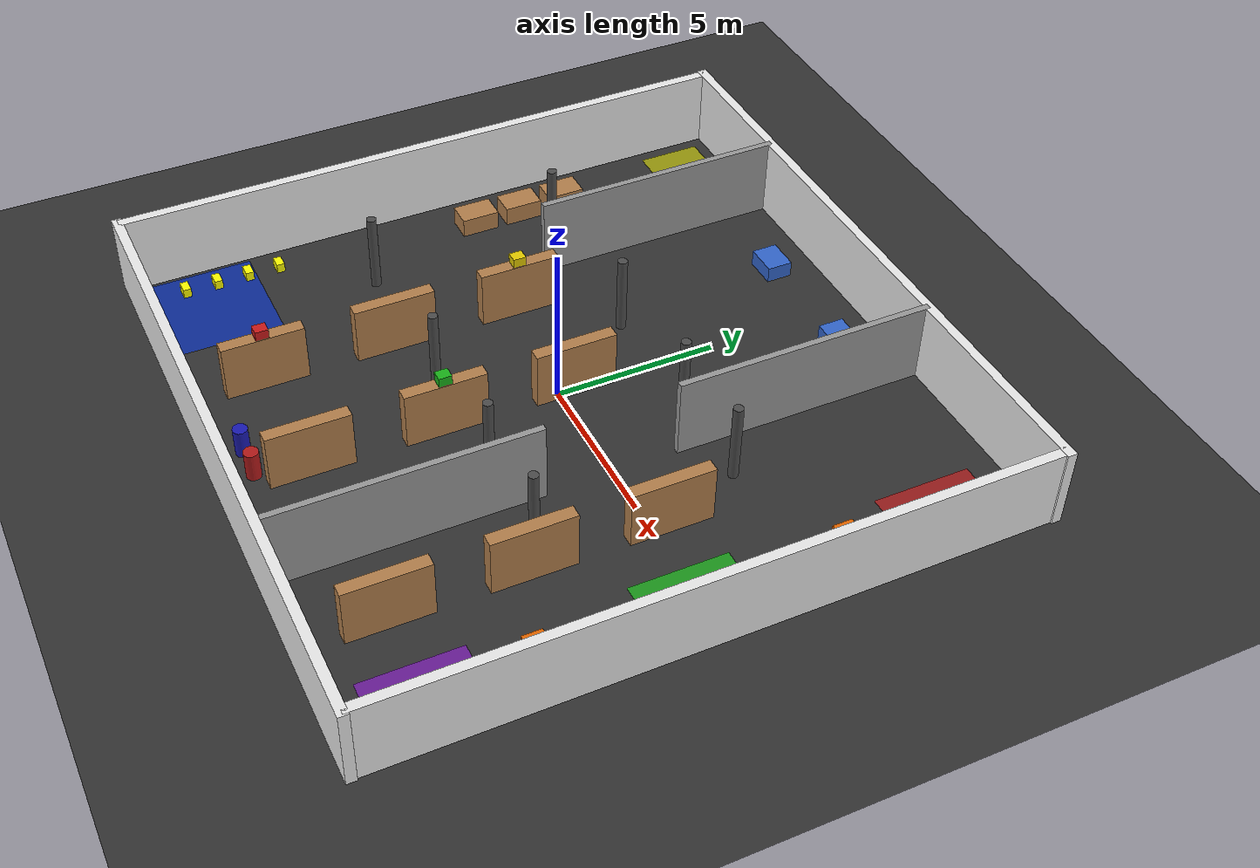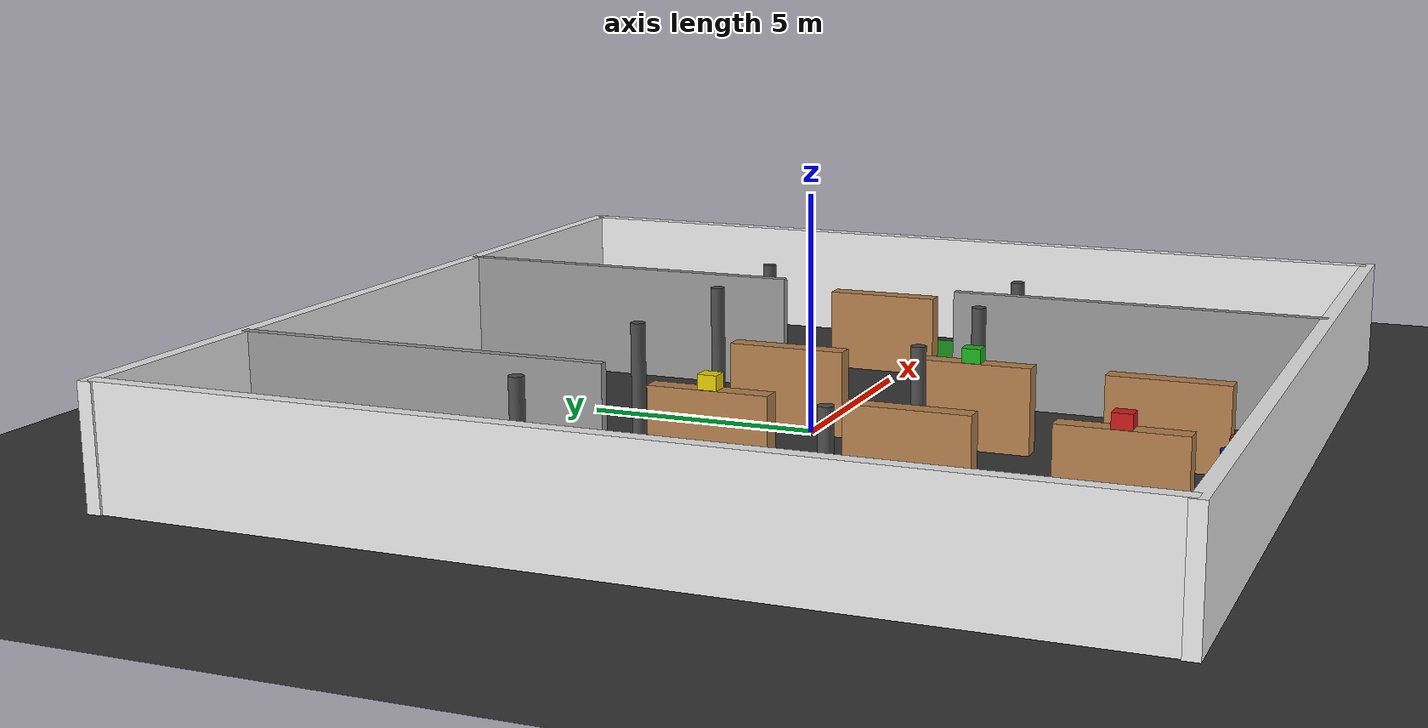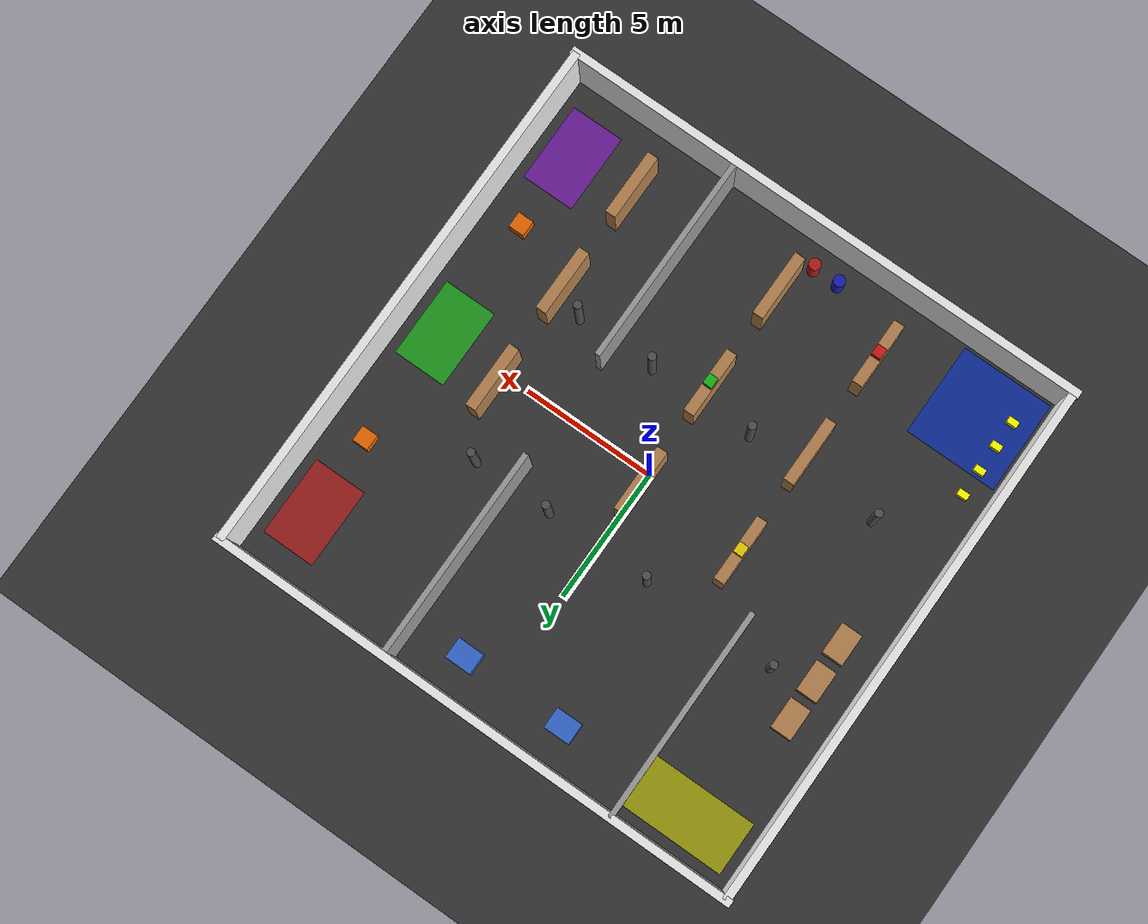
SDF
<?xml version="1.0" ?>
<sdf version="1.6">
  <world name="turtle_warehouse_world">

    <!-- 물리 엔진 설정 -->
    <physics type="ode">
      <real_time_update_rate>1000.0</real_time_update_rate>
      <max_step_size>0.001</max_step_size>
      <real_time_factor>1</real_time_factor>
    </physics>

    <!-- 조명 -->
    <light name="sun" type="directional">
      <cast_shadows>true</cast_shadows>
      <pose>0 0 10 0 0 0</pose>
      <diffuse>0.85 0.85 0.85 1</diffuse>
      <specular>0.2 0.2 0.2 1</specular>
      <attenuation>
        <range>1000</range>
        <constant>0.9</constant>
        <linear>0.01</linear>
        <quadratic>0.001</quadratic>
      </attenuation>
      <direction>-0.5 0.1 -0.9</direction>
    </light>

    <!-- 실내 형광등 효과 -->
    <light name="light_center" type="point">
      <pose>0 0 4 0 0 0</pose>
      <diffuse>0.7 0.7 0.7 1</diffuse>
      <attenuation>
        <range>20</range>
        <constant>0.5</constant>
        <linear>0.1</linear>
      </attenuation>
    </light>
    <light name="light_nw" type="point">
      <pose>-6 6 4 0 0 0</pose>
      <diffuse>0.6 0.6 0.6 1</diffuse>
      <attenuation>
        <range>15</range>
        <constant>0.5</constant>
        <linear>0.1</linear>
      </attenuation>
    </light>
    <light name="light_ne" type="point">
      <pose>6 6 4 0 0 0</pose>
      <diffuse>0.6 0.6 0.6 1</diffuse>
      <attenuation>
        <range>15</range>
        <constant>0.5</constant>
        <linear>0.1</linear>
      </attenuation>
    </light>
    <light name="light_se" type="point">
      <pose>6 -6 4 0 0 0</pose>
      <diffuse>0.6 0.6 0.6 1</diffuse>
      <attenuation>
        <range>15</range>
        <constant>0.5</constant>
        <linear>0.1</linear>
      </attenuation>
    </light>

    <!-- 바닥 -->
    <model name="ground_plane">
      <static>true</static>
      <link name="link">
        <collision name="collision">
          <geometry>
            <plane>
              <normal>0 0 1</normal>
              <size>40 40</size>
            </plane>
          </geometry>
        </collision>
        <visual name="visual">
          <geometry>
            <plane>
              <normal>0 0 1</normal>
              <size>40 40</size>
            </plane>
          </geometry>
          <material>
            <ambient>0.2 0.2 0.2 1</ambient>
            <diffuse>0.2 0.2 0.2 1</diffuse>
            <specular>0.1 0.1 0.1 1</specular>
          </material>
        </visual>
      </link>
    </model>

    <!-- 외벽 (Outer Walls)  20m x 20m 창고                           -->

    <model name="wall_north">
      <static>true</static>
      <pose>0 10 1.25 0 0 0</pose>
      <link name="link">
        <collision name="c">
          <geometry>
            <box>
              <size>20.4 0.3 2.5</size>
            </box>
          </geometry>
        </collision>
        <visual name="v">
          <geometry>
            <box>
              <size>20.4 0.3 2.5</size>
            </box>
          </geometry>
          <material>
            <script>
              <uri>file://media/materials/scripts/gazebo.material</uri>
              <name>Gazebo/White</name>
            </script>
          </material>
        </visual>
      </link>
    </model>

    <model name="wall_south">
      <static>true</static>
      <pose>0 -10 1.25 0 0 0</pose>
      <link name="link">
        <collision name="c">
          <geometry>
            <box>
              <size>20.4 0.3 2.5</size>
            </box>
          </geometry>
        </collision>
        <visual name="v">
          <geometry>
            <box>
              <size>20.4 0.3 2.5</size>
            </box>
          </geometry>
          <material>
            <script>
              <uri>file://media/materials/scripts/gazebo.material</uri>
              <name>Gazebo/White</name>
            </script>
          </material>
        </visual>
      </link>
    </model>

    <model name="wall_east">
      <static>true</static>
      <pose>10 0 1.25 0 0 0</pose>
      <link name="link">
        <collision name="c">
          <geometry>
            <box>
              <size>0.3 20 2.5</size>
            </box>
          </geometry>
        </collision>
        <visual name="v">
          <geometry>
            <box>
              <size>0.3 20 2.5</size>
            </box>
          </geometry>
          <material>
            <script>
              <uri>file://media/materials/scripts/gazebo.material</uri>
              <name>Gazebo/White</name>
            </script>
          </material>
        </visual>
      </link>
    </model>

    <model name="wall_west">
      <static>true</static>
      <pose>-10 0 1.25 0 0 0</pose>
      <link name="link">
        <collision name="c">
          <geometry>
            <box>
              <size>0.3 20 2.5</size>
            </box>
          </geometry>
        </collision>
        <visual name="v">
          <geometry>
            <box>
              <size>0.3 20 2.5</size>
            </box>
          </geometry>
          <material>
            <script>
              <uri>file://media/materials/scripts/gazebo.material</uri>
              <name>Gazebo/White</name>
            </script>
          </material>
        </visual>
      </link>
    </model>

    <!-- 내부 구획 (적재 구역 분리벽 + 병목 구간 벽)                     -->

    <!-- 적재 구역 분리벽: 서쪽에서 -5.5 x축으로 북쪽 구역 분리 -->
    <model name="inner_wall_loading_sep">
      <static>true</static>
      <pose>-5.5 6 1.25 0 0 0</pose>
      <link name="link">
        <collision name="c">
          <geometry>
            <box>
              <size>0.2 8 2.5</size>
            </box>
          </geometry>
        </collision>
        <visual name="v">
          <geometry>
            <box>
              <size>0.2 8 2.5</size>
            </box>
          </geometry>
          <material>
            <script>
              <uri>file://media/materials/scripts/gazebo.material</uri>
              <name>Gazebo/Grey</name>
            </script>
          </material>
        </visual>
      </link>
    </model>

    <!-- 병목 구간 북쪽 벽: 교차로 양보 테스트용 좁은 통로 형성 -->
    <!-- y=2~9 사이를 막아, y=-2~2 사이 약 1.5m 통로만 남김 -->
    <model name="bottleneck_wall_north">
      <static>true</static>
      <pose>3.5 6 1.25 0 0 0</pose>
      <link name="link">
        <collision name="c">
          <geometry>
            <box>
              <size>0.2 8 2.5</size>
            </box>
          </geometry>
        </collision>
        <visual name="v">
          <geometry>
            <box>
              <size>0.2 8 2.5</size>
            </box>
          </geometry>
          <material>
            <script>
              <uri>file://media/materials/scripts/gazebo.material</uri>
              <name>Gazebo/Grey</name>
            </script>
          </material>
        </visual>
      </link>
    </model>

    <!-- 병목 구간 남쪽 벽 -->
    <model name="bottleneck_wall_south">
      <static>true</static>
      <pose>3.5 -6 1.25 0 0 0</pose>
      <link name="link">
        <collision name="c">
          <geometry>
            <box>
              <size>0.2 8 2.5</size>
            </box>
          </geometry>
        </collision>
        <visual name="v">
          <geometry>
            <box>
              <size>0.2 8 2.5</size>
            </box>
          </geometry>
          <material>
            <script>
              <uri>file://media/materials/scripts/gazebo.material</uri>
              <name>Gazebo/Grey</name>
            </script>
          </material>
        </visual>
      </link>
    </model>

    <!-- 선반 Row A (x = -4)   선반 높이 1.8m, 폭 0.4m                -->

    <model name="shelf_A1">
      <static>true</static>
      <pose>-4 -7.5 0.9 0 0 0</pose>
      <link name="link">
        <collision name="c">
          <geometry>
            <box>
              <size>0.4 2.5 1.8</size>
            </box>
          </geometry>
        </collision>
        <visual name="v">
          <geometry>
            <box>
              <size>0.4 2.5 1.8</size>
            </box>
          </geometry>
          <material>
            <script>
              <uri>file://media/materials/scripts/gazebo.material</uri>
              <name>Gazebo/Wood</name>
            </script>
          </material>
        </visual>
      </link>
    </model>

    <model name="shelf_A2">
      <static>true</static>
      <pose>-4 -3.5 0.9 0 0 0</pose>
      <link name="link">
        <collision name="c">
          <geometry>
            <box>
              <size>0.4 2.5 1.8</size>
            </box>
          </geometry>
        </collision>
        <visual name="v">
          <geometry>
            <box>
              <size>0.4 2.5 1.8</size>
            </box>
          </geometry>
          <material>
            <script>
              <uri>file://media/materials/scripts/gazebo.material</uri>
              <name>Gazebo/Wood</name>
            </script>
          </material>
        </visual>
      </link>
    </model>

    <model name="shelf_A3">
      <static>true</static>
      <pose>-4 0.5 0.9 0 0 0</pose>
      <link name="link">
        <collision name="c">
          <geometry>
            <box>
              <size>0.4 2.5 1.8</size>
            </box>
          </geometry>
        </collision>
        <visual name="v">
          <geometry>
            <box>
              <size>0.4 2.5 1.8</size>
            </box>
          </geometry>
          <material>
            <script>
              <uri>file://media/materials/scripts/gazebo.material</uri>
              <name>Gazebo/Wood</name>
            </script>
          </material>
        </visual>
      </link>
    </model>

    <!-- 선반 Row B (x = 0)                                           -->

    <model name="shelf_B1">
      <static>true</static>
      <pose>0 -7.5 0.9 0 0 0</pose>
      <link name="link">
        <collision name="c">
          <geometry>
            <box>
              <size>0.4 2.5 1.8</size>
            </box>
          </geometry>
        </collision>
        <visual name="v">
          <geometry>
            <box>
              <size>0.4 2.5 1.8</size>
            </box>
          </geometry>
          <material>
            <script>
              <uri>file://media/materials/scripts/gazebo.material</uri>
              <name>Gazebo/Wood</name>
            </script>
          </material>
        </visual>
      </link>
    </model>

    <model name="shelf_B2">
      <static>true</static>
      <pose>0 -3.5 0.9 0 0 0</pose>
      <link name="link">
        <collision name="c">
          <geometry>
            <box>
              <size>0.4 2.5 1.8</size>
            </box>
          </geometry>
        </collision>
        <visual name="v">
          <geometry>
            <box>
              <size>0.4 2.5 1.8</size>
            </box>
          </geometry>
          <material>
            <script>
              <uri>file://media/materials/scripts/gazebo.material</uri>
              <name>Gazebo/Wood</name>
            </script>
          </material>
        </visual>
      </link>
    </model>

    <model name="shelf_B3">
      <static>true</static>
      <pose>0 0.5 0.9 0 0 0</pose>
      <link name="link">
        <collision name="c">
          <geometry>
            <box>
              <size>0.4 2.5 1.8</size>
            </box>
          </geometry>
        </collision>
        <visual name="v">
          <geometry>
            <box>
              <size>0.4 2.5 1.8</size>
            </box>
          </geometry>
          <material>
            <script>
              <uri>file://media/materials/scripts/gazebo.material</uri>
              <name>Gazebo/Wood</name>
            </script>
          </material>
        </visual>
      </link>
    </model>
    <model name="shelf_C1">
      <static>true</static>
      <pose>6 -7.5 0.9 0 0 0</pose>
      <link name="link">
        <collision name="c">
          <geometry>
            <box>
              <size>0.4 2.5 1.8</size>
            </box>
          </geometry>
        </collision>
        <visual name="v">
          <geometry>
            <box>
              <size>0.4 2.5 1.8</size>
            </box>
          </geometry>
          <material>
            <script>
              <uri>file://media/materials/scripts/gazebo.material</uri>
              <name>Gazebo/Wood</name>
            </script>
          </material>
        </visual>
      </link>
    </model>

    <model name="shelf_C2">
      <static>true</static>
      <pose>6 -3.5 0.9 0 0 0</pose>
      <link name="link">
        <collision name="c">
          <geometry>
            <box>
              <size>0.4 2.5 1.8</size>
            </box>
          </geometry>
        </collision>
        <visual name="v">
          <geometry>
            <box>
              <size>0.4 2.5 1.8</size>
            </box>
          </geometry>
          <material>
            <script>
              <uri>file://media/materials/scripts/gazebo.material</uri>
              <name>Gazebo/Wood</name>
            </script>
          </material>
        </visual>
      </link>
    </model>

    <model name="shelf_C3">
      <static>true</static>
      <pose>6 0.5 0.9 0 0 0</pose>
      <link name="link">
        <collision name="c">
          <geometry>
            <box>
              <size>0.4 2.5 1.8</size>
            </box>
          </geometry>
        </collision>
        <visual name="v">
          <geometry>
            <box>
              <size>0.4 2.5 1.8</size>
            </box>
          </geometry>
          <material>
            <script>
              <uri>file://media/materials/scripts/gazebo.material</uri>
              <name>Gazebo/Wood</name>
            </script>
          </material>
        </visual>
      </link>
    </model>

    <!-- 기둥 (Support Pillars) - 원통형, 6개                          -->

    <model name="pillar_1">
      <static>true</static>
      <pose>-7 3 1.25 0 0 0</pose>
      <link name="link">
        <collision name="c">
          <geometry>
            <cylinder>
              <radius>0.15</radius>
              <length>2.5</length>
            </cylinder>
          </geometry>
        </collision>
        <visual name="v">
          <geometry>
            <cylinder>
              <radius>0.15</radius>
              <length>2.5</length>
            </cylinder>
          </geometry>
          <material>
            <script>
              <uri>file://media/materials/scripts/gazebo.material</uri>
              <name>Gazebo/DarkGrey</name>
            </script>
          </material>
        </visual>
      </link>
    </model>

    <model name="pillar_2">
      <static>true</static>
      <pose>-7 -3 1.25 0 0 0</pose>
      <link name="link">
        <collision name="c">
          <geometry>
            <cylinder>
              <radius>0.15</radius>
              <length>2.5</length>
            </cylinder>
          </geometry>
        </collision>
        <visual name="v">
          <geometry>
            <cylinder>
              <radius>0.15</radius>
              <length>2.5</length>
            </cylinder>
          </geometry>
          <material>
            <script>
              <uri>file://media/materials/scripts/gazebo.material</uri>
              <name>Gazebo/DarkGrey</name>
            </script>
          </material>
        </visual>
      </link>
    </model>

    <model name="pillar_3">
      <static>true</static>
      <pose>-2 3 1.25 0 0 0</pose>
      <link name="link">
        <collision name="c">
          <geometry>
            <cylinder>
              <radius>0.15</radius>
              <length>2.5</length>
            </cylinder>
          </geometry>
        </collision>
        <visual name="v">
          <geometry>
            <cylinder>
              <radius>0.15</radius>
              <length>2.5</length>
            </cylinder>
          </geometry>
          <material>
            <script>
              <uri>file://media/materials/scripts/gazebo.material</uri>
              <name>Gazebo/DarkGrey</name>
            </script>
          </material>
        </visual>
      </link>
    </model>

    <model name="pillar_4">
      <static>true</static>
      <pose>-2 -3 1.25 0 0 0</pose>
      <link name="link">
        <collision name="c">
          <geometry>
            <cylinder>
              <radius>0.15</radius>
              <length>2.5</length>
            </cylinder>
          </geometry>
        </collision>
        <visual name="v">
          <geometry>
            <cylinder>
              <radius>0.15</radius>
              <length>2.5</length>
            </cylinder>
          </geometry>
          <material>
            <script>
              <uri>file://media/materials/scripts/gazebo.material</uri>
              <name>Gazebo/DarkGrey</name>
            </script>
          </material>
        </visual>
      </link>
    </model>

    <model name="pillar_5">
      <static>true</static>
      <pose>2 3 1.25 0 0 0</pose>
      <link name="link">
        <collision name="c">
          <geometry>
            <cylinder>
              <radius>0.15</radius>
              <length>2.5</length>
            </cylinder>
          </geometry>
        </collision>
        <visual name="v">
          <geometry>
            <cylinder>
              <radius>0.15</radius>
              <length>2.5</length>
            </cylinder>
          </geometry>
          <material>
            <script>
              <uri>file://media/materials/scripts/gazebo.material</uri>
              <name>Gazebo/DarkGrey</name>
            </script>
          </material>
        </visual>
      </link>
    </model>

    <model name="pillar_6">
      <static>true</static>
      <pose>2 -3 1.25 0 0 0</pose>
      <link name="link">
        <collision name="c">
          <geometry>
            <cylinder>
              <radius>0.15</radius>
              <length>2.5</length>
            </cylinder>
          </geometry>
        </collision>
        <visual name="v">
          <geometry>
            <cylinder>
              <radius>0.15</radius>
              <length>2.5</length>
            </cylinder>
          </geometry>
          <material>
            <script>
              <uri>file://media/materials/scripts/gazebo.material</uri>
              <name>Gazebo/DarkGrey</name>
            </script>
          </material>
        </visual>
      </link>
    </model>
    <model name="pillar_7">
      <static>true</static>
      <pose>5 -3 1.25 0 0 0</pose>
      <link name="link">
        <collision name="c">
          <geometry>
            <cylinder>
              <radius>0.15</radius>
              <length>2.5</length>
            </cylinder>
          </geometry>
        </collision>
        <visual name="v">
          <geometry>
            <cylinder>
              <radius>0.15</radius>
              <length>2.5</length>
            </cylinder>
          </geometry>
          <material>
            <script>
              <uri>file://media/materials/scripts/gazebo.material</uri>
              <name>Gazebo/DarkGrey</name>
            </script>
          </material>
        </visual>
      </link>
    </model>
    <model name="pillar_8">
      <static>true</static>
      <pose>5 3 1.25 0 0 0</pose>
      <link name="link">
        <collision name="c">
          <geometry>
            <cylinder>
              <radius>0.15</radius>
              <length>2.5</length>
            </cylinder>
          </geometry>
        </collision>
        <visual name="v">
          <geometry>
            <cylinder>
              <radius>0.15</radius>
              <length>2.5</length>
            </cylinder>
          </geometry>
          <material>
            <script>
              <uri>file://media/materials/scripts/gazebo.material</uri>
              <name>Gazebo/DarkGrey</name>
            </script>
          </material>
        </visual>
      </link>
    </model>

    <!-- 팔레트 스택 (Pallet Stacks)                                   -->

    <model name="pallet_1">
      <static>true</static>
      <pose>-8.5 4.0 0.3 0 0 0</pose>
      <link name="link">
        <collision name="c">
          <geometry>
            <box>
              <size>0.8 1.2 0.6</size>
            </box>
          </geometry>
        </collision>
        <visual name="v">
          <geometry>
            <box>
              <size>0.8 1.2 0.6</size>
            </box>
          </geometry>
          <material>
            <script>
              <uri>file://media/materials/scripts/gazebo.material</uri>
              <name>Gazebo/Wood</name>
            </script>
          </material>
        </visual>
      </link>
    </model>

    <model name="pallet_2">
      <static>true</static>
      <pose>-8.5 2.5 0.3 0 0 0</pose>
      <link name="link">
        <collision name="c">
          <geometry>
            <box>
              <size>0.8 1.2 0.6</size>
            </box>
          </geometry>
        </collision>
        <visual name="v">
          <geometry>
            <box>
              <size>0.8 1.2 0.6</size>
            </box>
          </geometry>
          <material>
            <script>
              <uri>file://media/materials/scripts/gazebo.material</uri>
              <name>Gazebo/Wood</name>
            </script>
          </material>
        </visual>
      </link>
    </model>

    <model name="pallet_3">
      <static>true</static>
      <pose>-8.5 1.0 0.3 0 0 0</pose>
      <link name="link">
        <collision name="c">
          <geometry>
            <box>
              <size>0.8 1.2 0.6</size>
            </box>
          </geometry>
        </collision>
        <visual name="v">
          <geometry>
            <box>
              <size>0.8 1.2 0.6</size>
            </box>
          </geometry>
          <material>
            <script>
              <uri>file://media/materials/scripts/gazebo.material</uri>
              <name>Gazebo/Wood</name>
            </script>
          </material>
        </visual>
      </link>
    </model>

    <!-- 박스 더미 / 물류 자재 장애물                                    -->

    <!-- 통로 측면 박스 더미 -->
    <model name="box_pile_1">
      <static>true</static>
      <pose>-2.5 8.5 0.25 0 0 0</pose>
      <link name="link">
        <collision name="c">
          <geometry>
            <box>
              <size>1.0 0.8 0.5</size>
            </box>
          </geometry>
        </collision>
        <visual name="v">
          <geometry>
            <box>
              <size>1.0 0.8 0.5</size>
            </box>
          </geometry>
          <material>
            <ambient>0.2 0.4 0.8 1</ambient>
            <diffuse>0.2 0.4 0.8 1</diffuse>
          </material>
        </visual>
      </link>
    </model>

    <model name="box_pile_2">
      <static>true</static>
      <pose>1.5 8.5 0.25 0 0 0</pose>
      <link name="link">
        <collision name="c">
          <geometry>
            <box>
              <size>1.0 0.8 0.5</size>
            </box>
          </geometry>
        </collision>
        <visual name="v">
          <geometry>
            <box>
              <size>1.0 0.8 0.5</size>
            </box>
          </geometry>
          <material>
            <ambient>0.2 0.4 0.8 1</ambient>
            <diffuse>0.2 0.4 0.8 1</diffuse>
          </material>
        </visual>
      </link>
    </model>

    <!-- 하역 구역 근처 박스 -->
    <model name="box_pile_3">
      <static>true</static>
      <pose>8.5 4.5 0.25 0 0 0</pose>
      <link name="link">
        <collision name="c">
          <geometry>
            <box>
              <size>0.6 0.6 0.5</size>
            </box>
          </geometry>
        </collision>
        <visual name="v">
          <geometry>
            <box>
              <size>0.6 0.6 0.5</size>
            </box>
          </geometry>
          <material>
            <ambient>0.9 0.4 0 1</ambient>
            <diffuse>0.9 0.4 0 1</diffuse>
          </material>
        </visual>
      </link>
    </model>

    <model name="box_pile_4">
      <static>true</static>
      <pose>8.5 -4.5 0.25 0 0 0</pose>
      <link name="link">
        <collision name="c">
          <geometry>
            <box>
              <size>0.6 0.6 0.5</size>
            </box>
          </geometry>
        </collision>
        <visual name="v">
          <geometry>
            <box>
              <size>0.6 0.6 0.5</size>
            </box>
          </geometry>
          <material>
            <ambient>0.9 0.4 0 1</ambient>
            <diffuse>0.9 0.4 0 1</diffuse>
          </material>
        </visual>
      </link>
    </model>

    <!-- 선반 위 물류 박스 (작은 박스들) -->
    <model name="shelf_box_1">
      <static>true</static>
      <pose>-4 -7.5 1.95 0 0 0</pose>
      <link name="link">
        <collision name="c">
          <geometry>
            <box>
              <size>0.35 0.4 0.3</size>
            </box>
          </geometry>
        </collision>
        <visual name="v">
          <geometry>
            <box>
              <size>0.35 0.4 0.3</size>
            </box>
          </geometry>
          <material>
            <ambient>0.8 0.1 0.1 1</ambient>
            <diffuse>0.8 0.1 0.1 1</diffuse>
          </material>
        </visual>
      </link>
    </model>

    <model name="shelf_box_2">
      <static>true</static>
      <pose>0 -3.5 1.95 0 0 0</pose>
      <link name="link">
        <collision name="c">
          <geometry>
            <box>
              <size>0.35 0.4 0.3</size>
            </box>
          </geometry>
        </collision>
        <visual name="v">
          <geometry>
            <box>
              <size>0.35 0.4 0.3</size>
            </box>
          </geometry>
          <material>
            <ambient>0.1 0.7 0.1 1</ambient>
            <diffuse>0.1 0.7 0.1 1</diffuse>
          </material>
        </visual>
      </link>
    </model>

    <model name="shelf_box_3">
      <static>true</static>
      <pose>-4 0.5 1.95 0 0 0</pose>
      <link name="link">
        <collision name="c">
          <geometry>
            <box>
              <size>0.35 0.4 0.3</size>
            </box>
          </geometry>
        </collision>
        <visual name="v">
          <geometry>
            <box>
              <size>0.35 0.4 0.3</size>
            </box>
          </geometry>
          <material>
            <ambient>0.9 0.8 0 1</ambient>
            <diffuse>0.9 0.8 0 1</diffuse>
          </material>
        </visual>
      </link>
    </model>

    <!-- 통로 장애물 드럼통 -->
    <model name="drum_1">
      <static>true</static>
      <pose>-1.5 -9 0.45 0 0 0</pose>
      <link name="link">
        <collision name="c">
          <geometry>
            <cylinder>
              <radius>0.22</radius>
              <length>0.9</length>
            </cylinder>
          </geometry>
        </collision>
        <visual name="v">
          <geometry>
            <cylinder>
              <radius>0.22</radius>
              <length>0.9</length>
            </cylinder>
          </geometry>
          <material>
            <ambient>0.1 0.1 0.7 1</ambient>
            <diffuse>0.1 0.1 0.7 1</diffuse>
          </material>
        </visual>
      </link>
    </model>

    <model name="drum_2">
      <static>true</static>
      <pose>-0.5 -9 0.45 0 0 0</pose>
      <link name="link">
        <collision name="c">
          <geometry>
            <cylinder>
              <radius>0.22</radius>
              <length>0.9</length>
            </cylinder>
          </geometry>
        </collision>
        <visual name="v">
          <geometry>
            <cylinder>
              <radius>0.22</radius>
              <length>0.9</length>
            </cylinder>
          </geometry>
          <material>
            <ambient>0.7 0.1 0.1 1</ambient>
            <diffuse>0.7 0.1 0.1 1</diffuse>
          </material>
        </visual>
      </link>
    </model>

    <!-- 구역 바닥 마커 (Zone Floor Markers)                           -->

    <!-- 대기/충전 구역 (파란색) - 충돌 물리 제거 -->
    <model name="zone_standby">
      <static>true</static>
      <pose>-8 -8 0.001 0 0 0</pose>
      <link name="link">
        <visual name="v">
          <geometry>
            <box>
              <size>3.5 3.5 0.002</size>
            </box>
          </geometry>
          <material>
            <ambient>0 0.2 0.9 0.6</ambient>
            <diffuse>0 0.2 0.9 0.6</diffuse>
          </material>
        </visual>
      </link>
    </model>

    <!-- 적재 구역 (노란색) - 충돌 물리 제거 -->
    <model name="zone_loading">
      <static>true</static>
      <pose>-7.5 8.5 0.001 0 0 0</pose>
      <link name="link">
        <visual name="v">
          <geometry>
            <box>
              <size>4 2 0.002</size>
            </box>
          </geometry>
          <material>
            <ambient>0.9 0.9 0 0.6</ambient>
            <diffuse>0.9 0.9 0 0.6</diffuse>
          </material>
        </visual>
      </link>
    </model>

    <!-- 하역 구역 A (빨간색) - 충돌 물리 제거 -->
    <model name="zone_unload_A">
      <static>true</static>
      <pose>8.5 7.5 0.001 0 0 0</pose>
      <link name="link">
        <visual name="v">
          <geometry>
            <box>
              <size>2 3 0.002</size>
            </box>
          </geometry>
          <material>
            <ambient>0.9 0.1 0.1 0.6</ambient>
            <diffuse>0.9 0.1 0.1 0.6</diffuse>
          </material>
        </visual>
      </link>
    </model>

    <!-- 하역 구역 B (초록색) - 충돌 물리 제거 -->
    <model name="zone_unload_B">
      <static>true</static>
      <pose>8.5 0 0.001 0 0 0</pose>
      <link name="link">
        <visual name="v">
          <geometry>
            <box>
              <size>2 3 0.002</size>
            </box>
          </geometry>
          <material>
            <ambient>0.1 0.9 0.1 0.6</ambient>
            <diffuse>0.1 0.9 0.1 0.6</diffuse>
          </material>
        </visual>
      </link>
    </model>

    <!-- 하역 구역 C (보라색) - 충돌 물리 제거 -->
    <model name="zone_unload_C">
      <static>true</static>
      <pose>8.5 -7.5 0.001 0 0 0</pose>
      <link name="link">
        <visual name="v">
          <geometry>
            <box>
              <size>2 3 0.002</size>
            </box>
          </geometry>
          <material>
            <ambient>0.6 0.1 0.9 0.6</ambient>
            <diffuse>0.6 0.1 0.9 0.6</diffuse>
          </material>
        </visual>
      </link>
    </model>

    <!-- 충전 스테이션 (Charging Stations) - 노란 단말기 형태          -->

    <model name="charging_sta_1">
      <static>true</static>
      <pose>-9 -8.5 0.15 0 0 0</pose>
      <link name="link">
        <collision name="c">
          <geometry>
            <box>
              <size>0.4 0.25 0.3</size>
            </box>
          </geometry>
        </collision>
        <visual name="v">
          <geometry>
            <box>
              <size>0.4 0.25 0.3</size>
            </box>
          </geometry>
          <material>
            <ambient>1 1 0 1</ambient>
            <diffuse>1 1 0 1</diffuse>
          </material>
        </visual>
      </link>
    </model>

    <model name="charging_sta_2">
      <static>true</static>
      <pose>-9 -7.5 0.15 0 0 0</pose>
      <link name="link">
        <collision name="c">
          <geometry>
            <box>
              <size>0.4 0.25 0.3</size>
            </box>
          </geometry>
        </collision>
        <visual name="v">
          <geometry>
            <box>
              <size>0.4 0.25 0.3</size>
            </box>
          </geometry>
          <material>
            <ambient>1 1 0 1</ambient>
            <diffuse>1 1 0 1</diffuse>
          </material>
        </visual>
      </link>
    </model>

    <model name="charging_sta_3">
      <static>true</static>
      <pose>-9 -6.5 0.15 0 0 0</pose>
      <link name="link">
        <collision name="c">
          <geometry>
            <box>
              <size>0.4 0.25 0.3</size>
            </box>
          </geometry>
        </collision>
        <visual name="v">
          <geometry>
            <box>
              <size>0.4 0.25 0.3</size>
            </box>
          </geometry>
          <material>
            <ambient>1 1 0 1</ambient>
            <diffuse>1 1 0 1</diffuse>
          </material>
        </visual>
      </link>
    </model>

    <model name="charging_sta_4">
      <static>true</static>
      <pose>-9 -5.5 0.15 0 0 0</pose>
      <link name="link">
        <collision name="c">
          <geometry>
            <box>
              <size>0.4 0.25 0.3</size>
            </box>
          </geometry>
        </collision>
        <visual name="v">
          <geometry>
            <box>
              <size>0.4 0.25 0.3</size>
            </box>
          </geometry>
          <material>
            <ambient>1 1 0 1</ambient>
            <diffuse>1 1 0 1</diffuse>
          </material>
        </visual>
      </link>
    </model>

  </world>
</sdf>
